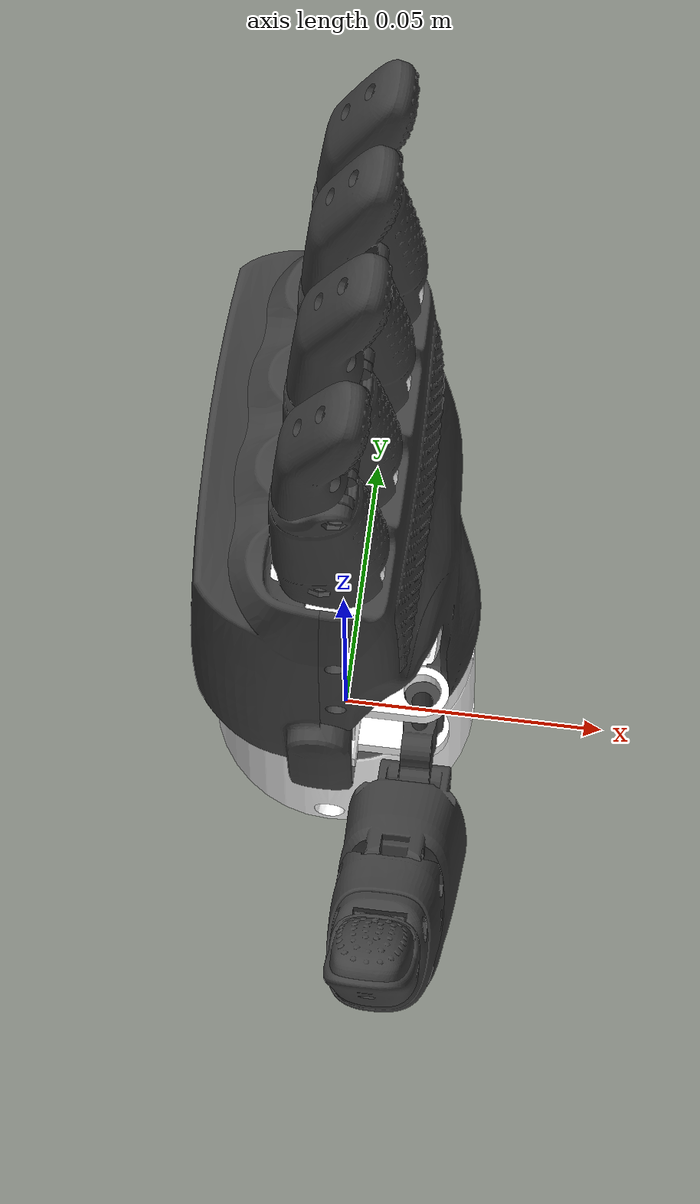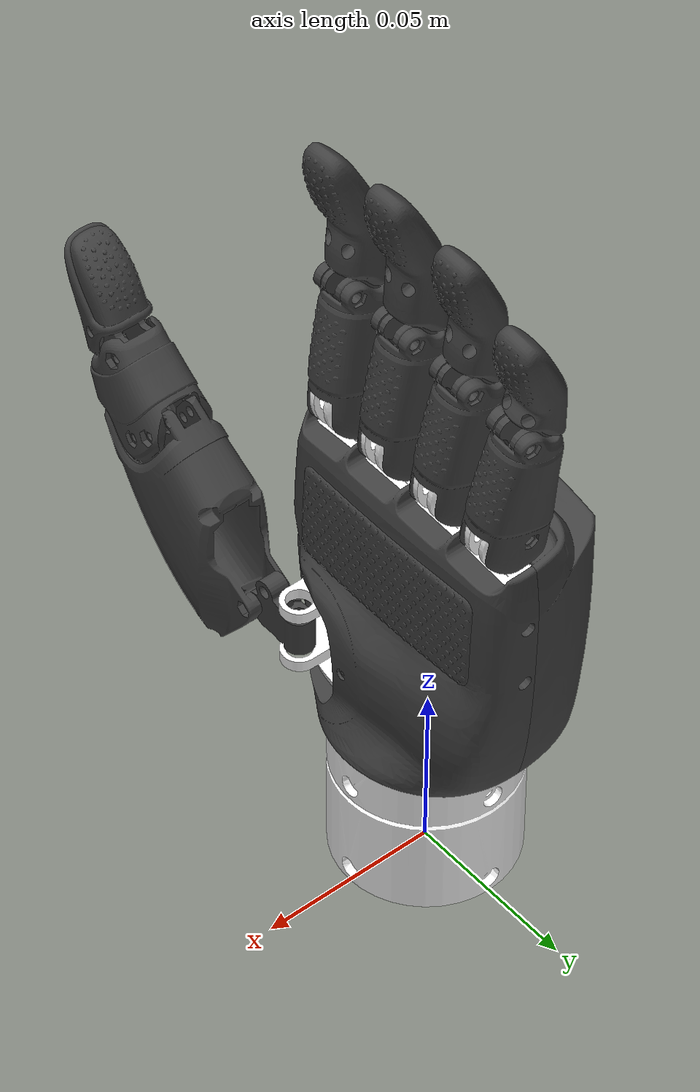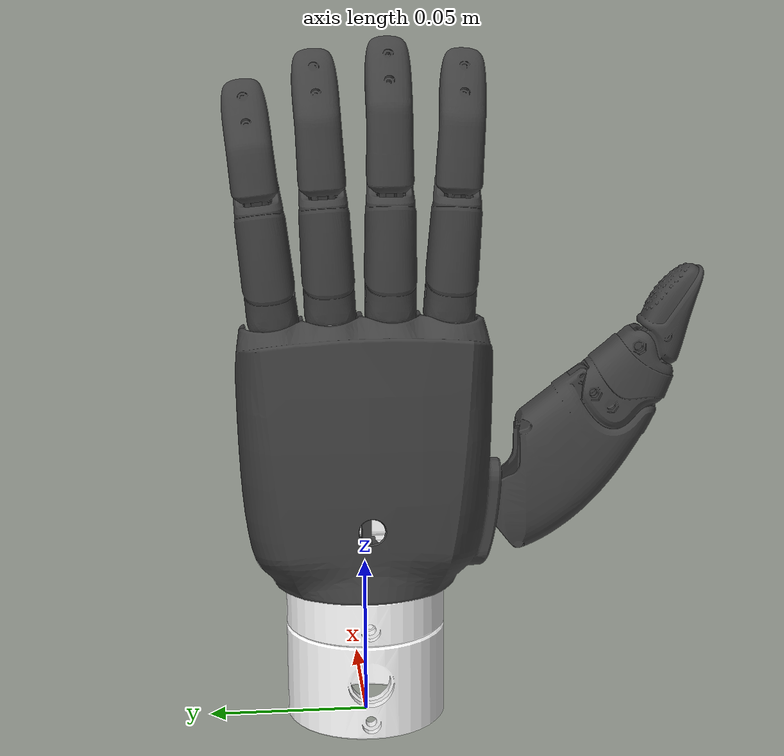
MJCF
<mujoco model="inspire_rh56f1_left">
  <compiler angle="radian" meshdir="assets_left" autolimits="true"/>

  <asset>
    <mesh file="base_link.obj"/>
    <mesh file="palm_1.obj"/>
    <mesh file="palm_2.obj"/>
    <mesh file="palm_2_collision_0.obj"/>
    <mesh file="palm_2_collision_1.obj"/>
    <mesh file="palm_2_collision_2.obj"/>
    <mesh file="palm_2_collision_3.obj"/>
    <mesh file="palm_2_collision_4.obj"/>
    <mesh file="palm_2_collision_5.obj"/>
    <mesh file="palm_2_collision_6.obj"/>
    <mesh file="palm_2_collision_7.obj"/>
    <mesh file="palm_2_collision_8.obj"/>
    <mesh file="palm_2_collision_9.obj"/>
    <mesh file="palm_2_collision_10.obj"/>
    <mesh file="palm_2_collision_11.obj"/>
    <mesh file="palm_2_collision_12.obj"/>
    <mesh file="palm_2_collision_13.obj"/>
    <mesh file="palm_2_collision_14.obj"/>
    <mesh file="palm_2_collision_15.obj"/>
    <mesh file="palm_2_collision_16.obj"/>
    <mesh file="palm_2_collision_17.obj"/>
    <mesh file="palm_2_collision_18.obj"/>
    <mesh file="palm_2_collision_19.obj"/>
    <mesh file="palm_2_collision_20.obj"/>
    <mesh file="palm_2_collision_21.obj"/>
    <mesh file="palm_2_collision_22.obj"/>
    <mesh file="palm_2_collision_23.obj"/>
    <mesh file="palm_2_collision_24.obj"/>
    <mesh file="palm_2_collision_25.obj"/>
    <mesh file="palm_2_collision_26.obj"/>
    <mesh file="palm_2_collision_27.obj"/>
    <mesh file="palm_2_collision_28.obj"/>
    <mesh file="palm_2_collision_29.obj"/>
    <mesh file="palm_2_collision_30.obj"/>
    <mesh file="palm_2_collision_31.obj"/>
    <mesh file="palm_2_collision_32.obj"/>
    <mesh file="palm_2_collision_33.obj"/>
    <mesh file="palm_2_collision_34.obj"/>
    <mesh file="palm_2_collision_35.obj"/>
    <mesh file="palm_2_collision_36.obj"/>
    <mesh file="palm_2_collision_37.obj"/>
    <mesh file="palm_2_collision_38.obj"/>
    <mesh file="palm_2_collision_39.obj"/>
    <mesh file="palm_2_collision_40.obj"/>
    <mesh file="palm_2_collision_41.obj"/>
    <mesh file="palm_2_collision_42.obj"/>
    <mesh file="palm_2_collision_43.obj"/>
    <mesh file="palm_2_collision_44.obj"/>
    <mesh file="palm_2_collision_45.obj"/>
    <mesh file="palm_2_collision_46.obj"/>
    <mesh file="palm_2_collision_47.obj"/>
    <mesh file="palm_2_collision_48.obj"/>
    <mesh file="palm_2_collision_49.obj"/>
    <mesh file="palm_2_collision_50.obj"/>
    <mesh file="palm_2_collision_51.obj"/>
    <mesh file="palm_2_collision_52.obj"/>
    <mesh file="palm_2_collision_53.obj"/>
    <mesh file="palm_2_collision_54.obj"/>
    <mesh file="palm_2_collision_55.obj"/>
    <mesh file="palm_2_collision_56.obj"/>
    <mesh file="palm_2_collision_57.obj"/>
    <mesh file="palm_2_collision_58.obj"/>
    <mesh file="palm_2_collision_59.obj"/>
    <mesh file="palm_2_collision_60.obj"/>
    <mesh file="palm_2_collision_61.obj"/>
    <mesh file="palm_2_collision_62.obj"/>
    <mesh file="palm_2_collision_63.obj"/>
    <mesh file="palm_2_collision_64.obj"/>
    <mesh file="palm_2_collision_65.obj"/>
    <mesh file="palm_2_collision_66.obj"/>
    <mesh file="palm_2_collision_67.obj"/>
    <mesh file="palm_2_collision_68.obj"/>
    <mesh file="palm_2_collision_69.obj"/>
    <mesh file="palm_2_collision_70.obj"/>
    <mesh file="palm_2_collision_71.obj"/>
    <mesh file="palm_2_collision_72.obj"/>
    <mesh file="palm_2_collision_73.obj"/>
    <mesh file="palm_2_collision_74.obj"/>
    <mesh file="palm_2_collision_75.obj"/>
    <mesh file="palm_2_collision_76.obj"/>
    <mesh file="palm_2_collision_77.obj"/>
    <mesh file="palm_2_collision_78.obj"/>
    <mesh file="palm_2_collision_79.obj"/>
    <mesh file="palm_2_collision_80.obj"/>
    <mesh file="palm_2_collision_81.obj"/>
    <mesh file="palm_2_collision_82.obj"/>
    <mesh file="palm_2_collision_83.obj"/>
    <mesh file="palm_2_collision_84.obj"/>
    <mesh file="palm_2_collision_85.obj"/>
    <mesh file="palm_2_collision_86.obj"/>
    <mesh file="palm_2_collision_87.obj"/>
    <mesh file="palm_2_collision_88.obj"/>
    <mesh file="palm_2_collision_89.obj"/>
    <mesh file="palm_2_collision_90.obj"/>
    <mesh file="palm_2_collision_91.obj"/>
    <mesh file="palm_2_collision_92.obj"/>
    <mesh file="palm_2_collision_93.obj"/>
    <mesh file="palm_2_collision_94.obj"/>
    <mesh file="palm_2_collision_95.obj"/>
    <mesh file="palm_2_collision_96.obj"/>
    <mesh file="palm_2_collision_97.obj"/>
    <mesh file="palm_2_collision_98.obj"/>
    <mesh file="palm_2_collision_99.obj"/>
    <mesh file="palm_2_collision_100.obj"/>
    <mesh file="palm_2_collision_101.obj"/>
    <mesh file="palm_2_collision_102.obj"/>
    <mesh file="palm_2_collision_103.obj"/>
    <mesh file="palm_2_collision_104.obj"/>
    <mesh file="palm_2_collision_105.obj"/>
    <mesh file="palm_2_collision_106.obj"/>
    <mesh file="palm_2_collision_107.obj"/>
    <mesh file="palm_2_collision_108.obj"/>
    <mesh file="palm_2_collision_109.obj"/>
    <mesh file="palm_2_collision_110.obj"/>
    <mesh file="palm_2_collision_111.obj"/>
    <mesh file="palm_2_collision_112.obj"/>
    <mesh file="palm_2_collision_113.obj"/>
    <mesh file="palm_2_collision_114.obj"/>
    <mesh file="palm_2_collision_115.obj"/>
    <mesh file="palm_2_collision_116.obj"/>
    <mesh file="palm_2_collision_117.obj"/>
    <mesh file="palm_2_collision_118.obj"/>
    <mesh file="palm_2_collision_119.obj"/>
    <mesh file="palm_2_collision_120.obj"/>
    <mesh file="palm_2_collision_121.obj"/>
    <mesh file="palm_2_collision_122.obj"/>
    <mesh file="palm_2_collision_123.obj"/>
    <mesh file="palm_2_collision_124.obj"/>
    <mesh file="palm_2_collision_125.obj"/>
    <mesh file="palm_2_collision_126.obj"/>
    <mesh file="palm_2_collision_127.obj"/>
    <mesh file="palm_2_collision_128.obj"/>
    <mesh file="palm_2_collision_129.obj"/>
    <mesh file="palm_3.obj"/>
    <mesh file="thumb_1.obj"/>
    <mesh file="thumb_2.obj"/>
    <mesh file="thumb_3.obj"/>
    <mesh file="thumb_4.obj"/>
    <mesh file="index_1.obj"/>
    <mesh file="index_2.obj"/>
    <mesh file="index_2_collision_0.obj"/>
    <mesh file="index_2_collision_1.obj"/>
    <mesh file="index_2_collision_2.obj"/>
    <mesh file="index_2_collision_3.obj"/>
    <mesh file="index_2_collision_4.obj"/>
    <mesh file="index_2_collision_5.obj"/>
    <mesh file="index_2_collision_6.obj"/>
    <mesh file="index_2_collision_7.obj"/>
    <mesh file="index_2_collision_8.obj"/>
    <mesh file="index_2_collision_9.obj"/>
    <mesh file="index_2_collision_10.obj"/>
    <mesh file="index_2_collision_11.obj"/>
    <mesh file="index_2_collision_12.obj"/>
    <mesh file="index_2_collision_13.obj"/>
    <mesh file="index_2_collision_14.obj"/>
    <mesh file="index_2_collision_15.obj"/>
    <mesh file="index_2_collision_16.obj"/>
    <mesh file="index_2_collision_17.obj"/>
    <mesh file="index_2_collision_18.obj"/>
    <mesh file="index_2_collision_19.obj"/>
    <mesh file="index_2_collision_20.obj"/>
    <mesh file="index_2_collision_21.obj"/>
    <mesh file="index_2_collision_22.obj"/>
    <mesh file="middle_1.obj"/>
    <mesh file="middle_2.obj"/>
    <mesh file="middle_2_collision_0.obj"/>
    <mesh file="middle_2_collision_1.obj"/>
    <mesh file="middle_2_collision_2.obj"/>
    <mesh file="middle_2_collision_3.obj"/>
    <mesh file="middle_2_collision_4.obj"/>
    <mesh file="middle_2_collision_5.obj"/>
    <mesh file="middle_2_collision_6.obj"/>
    <mesh file="middle_2_collision_7.obj"/>
    <mesh file="middle_2_collision_8.obj"/>
    <mesh file="middle_2_collision_9.obj"/>
    <mesh file="middle_2_collision_10.obj"/>
    <mesh file="middle_2_collision_11.obj"/>
    <mesh file="middle_2_collision_12.obj"/>
    <mesh file="middle_2_collision_13.obj"/>
    <mesh file="middle_2_collision_14.obj"/>
    <mesh file="middle_2_collision_15.obj"/>
    <mesh file="middle_2_collision_16.obj"/>
    <mesh file="ring_1.obj"/>
    <mesh file="ring_2.obj"/>
    <mesh file="ring_2_collision_0.obj"/>
    <mesh file="ring_2_collision_1.obj"/>
    <mesh file="ring_2_collision_2.obj"/>
    <mesh file="ring_2_collision_3.obj"/>
    <mesh file="ring_2_collision_4.obj"/>
    <mesh file="ring_2_collision_5.obj"/>
    <mesh file="ring_2_collision_6.obj"/>
    <mesh file="ring_2_collision_7.obj"/>
    <mesh file="ring_2_collision_8.obj"/>
    <mesh file="ring_2_collision_9.obj"/>
    <mesh file="ring_2_collision_10.obj"/>
    <mesh file="ring_2_collision_11.obj"/>
    <mesh file="ring_2_collision_12.obj"/>
    <mesh file="ring_2_collision_13.obj"/>
    <mesh file="ring_2_collision_14.obj"/>
    <mesh file="ring_2_collision_15.obj"/>
    <mesh file="ring_2_collision_16.obj"/>
    <mesh file="ring_2_collision_17.obj"/>
    <mesh file="ring_2_collision_18.obj"/>
    <mesh file="ring_2_collision_19.obj"/>
    <mesh file="ring_2_collision_20.obj"/>
    <mesh file="little_1.obj"/>
    <mesh file="little_2.obj"/>
    <mesh file="little_2_collision_0.obj"/>
    <mesh file="little_2_collision_1.obj"/>
    <mesh file="little_2_collision_2.obj"/>
    <mesh file="little_2_collision_3.obj"/>
    <mesh file="little_2_collision_4.obj"/>
    <mesh file="little_2_collision_5.obj"/>
    <mesh file="little_2_collision_6.obj"/>
    <mesh file="little_2_collision_7.obj"/>
    <mesh file="little_2_collision_8.obj"/>
    <mesh file="little_2_collision_9.obj"/>
    <mesh file="little_2_collision_10.obj"/>
    <mesh file="little_2_collision_11.obj"/>
    <mesh file="little_2_collision_12.obj"/>
    <mesh file="little_2_collision_13.obj"/>
    <mesh file="little_2_collision_14.obj"/>
    <mesh file="little_2_collision_15.obj"/>
    <mesh file="little_2_collision_16.obj"/>
    <mesh file="little_2_collision_17.obj"/>
    <mesh file="little_2_collision_18.obj"/>
    <mesh file="little_2_collision_19.obj"/>
    <mesh file="little_2_collision_20.obj"/>
    <mesh file="little_2_collision_21.obj"/>
    <mesh file="little_2_collision_22.obj"/>
    <mesh file="little_2_collision_23.obj"/>
    <mesh file="little_2_collision_24.obj"/>
    <mesh file="little_2_collision_25.obj"/>
    <mesh file="little_2_collision_26.obj"/>
    <mesh file="little_2_collision_27.obj"/>
    <mesh file="little_2_collision_28.obj"/>
    <mesh file="little_2_collision_29.obj"/>
    <mesh file="little_2_collision_30.obj"/>
    <mesh file="little_2_collision_31.obj"/>
    <mesh file="little_2_collision_32.obj"/>

    <mesh file="palm_tactile_sensor.obj"/>
  </asset>

  <default>
    <default class="inspire_rh56f1_left">
      <default class="visual">
        <geom type="mesh" contype="0" conaffinity="0" group="2" rgba="0.25 0.25 0.25 1" mass="0"/>
      </default>

      <default class="collision">
        <geom type="mesh" group="3" rgba="0.25 0.25 0.25 1"/>
      </default>

      <default class="joint">
        <joint armature="0.001" damping="0.05" frictionloss="0.001"/>
        <default class="thumb_1">
          <joint range="0 2.0944"/>
          <position ctrlrange="0 2.0944"/>
        </default>
        <default class="thumb_2">
          <joint range="0 0.4746"/>
          <position ctrlrange="0 0.4746"/>
        </default>
        <default class="thumb_3">
          <joint range="0 3.14"/>
        </default>
        <default class="thumb_4">
          <joint range="0 3.14"/>
        </default>
        <default class="finger_1">
          <joint axis="0 0 -1" range="0 1.5286"/>
          <position ctrlrange="0 1.5286"/>
        </default>
        <default class="finger_2">
          <joint axis="0 0 -1" range="0 3.14"/>
        </default>
      </default>
    </default>
  </default>

  <worldbody>
    <body name="base_link" childclass="inspire_rh56f1_left">
      <geom rgba="1 1 1 1" mesh="base_link" class="visual"/>
      <geom rgba="1 1 1 1" mesh="base_link" class="collision"/>
      <body name="palm" pos="0 0 0.0305">
        <geom rgba="1 1 1 1" mesh="palm_1" class="visual"/>
        <geom mesh="palm_2" class="visual"/>
        <geom mesh="palm_2_collision_0" rgba="0.14206185570898022 0.6122910523167692 0.9866102667565307 1" class="collision"/>
        <geom mesh="palm_2_collision_1" rgba="0.7212493718993862 0.08609639354667564 0.20719384763311433 1" class="collision"/>
        <geom mesh="palm_2_collision_2" rgba="0.18489349942844446 0.28353887721296755 0.08292656414993771 1" class="collision"/>
        <geom mesh="palm_2_collision_3" rgba="0.013000274959250269 0.030443842182487857 0.6916140638799306 1" class="collision"/>
        <geom mesh="palm_2_collision_4" rgba="0.3444471858017044 0.2867014575626077 0.6418222576718902 1" class="collision"/>
        <geom mesh="palm_2_collision_5" rgba="0.04759252251881785 0.7035487295493952 0.5227900881994707 1" class="collision"/>
        <geom mesh="palm_2_collision_6" rgba="0.798804166863255 0.15556509380850692 0.06436139096366245 1" class="collision"/>
        <geom mesh="palm_2_collision_7" rgba="0.9652911672040825 0.23609545465457016 0.9948435843105485 1" class="collision"/>
        <geom mesh="palm_2_collision_8" rgba="0.28546775296174676 0.13044602355146395 0.19202620354053368 1" class="collision"/>
        <geom mesh="palm_2_collision_9" rgba="0.6279266193849576 0.2587987331076772 0.017920129391572504 1" class="collision"/>
        <geom mesh="palm_2_collision_10" rgba="0.5456049217055454 0.5050241089109673 0.9281891873654419 1" class="collision"/>
        <geom mesh="palm_2_collision_11" rgba="0.7591608752918528 0.3947804793792339 0.3306838527083297 1" class="collision"/>
        <geom mesh="palm_2_collision_12" rgba="0.6179266593718417 0.8328071167731302 0.902469987410971 1" class="collision"/>
        <geom mesh="palm_2_collision_13" rgba="0.7936624082435719 0.25837956395579065 0.16732755947252298 1" class="collision"/>
        <geom mesh="palm_2_collision_14" rgba="0.4463036066143916 0.644617741699177 0.4899572460735473 1" class="collision"/>
        <geom mesh="palm_2_collision_15" rgba="0.15246593204663828 0.5923774125373285 0.5862696541783617 1" class="collision"/>
        <geom mesh="palm_2_collision_16" rgba="0.1646512133524216 0.26961172361471386 0.6583997351212504 1" class="collision"/>
        <geom mesh="palm_2_collision_17" rgba="0.8556893839442072 0.5542426703362595 0.38529211705775657 1" class="collision"/>
        <geom mesh="palm_2_collision_18" rgba="0.9997183679541146 0.03270609754437814 0.0089964075625385 1" class="collision"/>
        <geom mesh="palm_2_collision_19" rgba="0.5947674492488465 0.7979289113385819 0.6098690121402385 1" class="collision"/>
        <geom mesh="palm_2_collision_20" rgba="0.29440836570848905 0.07212196912705537 0.5035743828464055 1" class="collision"/>
        <geom mesh="palm_2_collision_21" rgba="0.12861972998720417 0.8770663902734385 0.11573978090793291 1" class="collision"/>
        <geom mesh="palm_2_collision_22" rgba="0.000972603311090281 0.04901934133838537 0.561103540221837 1" class="collision"/>
        <geom mesh="palm_2_collision_23" rgba="0.2575163194415422 0.6151847804823817 0.13757004882308443 1" class="collision"/>
        <geom mesh="palm_2_collision_24" rgba="0.06167798226410859 0.32297718268303044 0.8649733355925451 1" class="collision"/>
        <geom mesh="palm_2_collision_25" rgba="0.08214398990921423 0.6277276083794697 0.33161346794005886 1" class="collision"/>
        <geom mesh="palm_2_collision_26" rgba="0.4732441267618587 0.5823551225303313 0.8927273321420496 1" class="collision"/>
        <geom mesh="palm_2_collision_27" rgba="0.7549279371792222 0.35684483700878267 0.20172689957291579 1" class="collision"/>
        <geom mesh="palm_2_collision_28" rgba="0.10341202812017047 0.3343993369221374 0.21550422675130387 1" class="collision"/>
        <geom mesh="palm_2_collision_29" rgba="0.8648376281954612 0.5979264343252207 0.012798471725145033 1" class="collision"/>
        <geom mesh="palm_2_collision_30" rgba="0.08311426049586912 0.71690414548751 0.16755731330447932 1" class="collision"/>
        <geom mesh="palm_2_collision_31" rgba="0.5881504594861283 0.2320479132060438 0.03203469728063302 1" class="collision"/>
        <geom mesh="palm_2_collision_32" rgba="0.16949545939283273 0.5277728137609866 0.978573556264688 1" class="collision"/>
        <geom mesh="palm_2_collision_33" rgba="0.32686626212988346 0.960836237767816 0.9893391112511141 1" class="collision"/>
        <geom mesh="palm_2_collision_34" rgba="0.5075247510010725 0.5166764419508932 0.6928701329576361 1" class="collision"/>
        <geom mesh="palm_2_collision_35" rgba="0.6597216090063632 0.5569225710616088 0.7263426926485228 1" class="collision"/>
        <geom mesh="palm_2_collision_36" rgba="0.8108553100401092 0.8852694747797353 0.23061675551790273 1" class="collision"/>
        <geom mesh="palm_2_collision_37" rgba="0.31503268391823536 0.2877484122891646 0.030632625902139554 1" class="collision"/>
        <geom mesh="palm_2_collision_38" rgba="0.5949542274211941 0.5966680664964464 0.5390605277331313 1" class="collision"/>
        <geom mesh="palm_2_collision_39" rgba="0.7634425373483289 0.5166874359125065 0.7535013179432475 1" class="collision"/>
        <geom mesh="palm_2_collision_40" rgba="0.7827559215166592 0.5648680125818898 0.20860083107052652 1" class="collision"/>
        <geom mesh="palm_2_collision_41" rgba="0.6893142187188741 0.7531178822328046 0.5903023703595167 1" class="collision"/>
        <geom mesh="palm_2_collision_42" rgba="0.26186896369954427 0.4004699817165869 0.7453751346598727 1" class="collision"/>
        <geom mesh="palm_2_collision_43" rgba="0.14911934028186435 0.9326104842935233 0.9201552507360579 1" class="collision"/>
        <geom mesh="palm_2_collision_44" rgba="0.24331707389494184 0.6794377592177892 0.06539723295222233 1" class="collision"/>
        <geom mesh="palm_2_collision_45" rgba="0.939049837529741 0.6684372980179948 0.8886582228507142 1" class="collision"/>
        <geom mesh="palm_2_collision_46" rgba="0.11746836350472423 0.9665970649018927 0.7186354203853996 1" class="collision"/>
        <geom mesh="palm_2_collision_47" rgba="0.2902823891881564 0.9546600047044131 0.6203220272684061 1" class="collision"/>
        <geom mesh="palm_2_collision_48" rgba="0.9229288316815064 0.45953422704603764 0.5004112631027775 1" class="collision"/>
        <geom mesh="palm_2_collision_49" rgba="0.40560924752665994 0.9756128115993686 0.5482920216814762 1" class="collision"/>
        <geom mesh="palm_2_collision_50" rgba="0.3686786157453643 0.9541386704285774 0.4492302452082575 1" class="collision"/>
        <geom mesh="palm_2_collision_51" rgba="0.5923686298592268 0.9634704267873326 0.5965154537176205 1" class="collision"/>
        <geom mesh="palm_2_collision_52" rgba="0.13817363266930627 0.10612087008658566 0.16298823733585088 1" class="collision"/>
        <geom mesh="palm_2_collision_53" rgba="0.8467746337780738 0.3606217828396683 0.38771499885599636 1" class="collision"/>
        <geom mesh="palm_2_collision_54" rgba="0.6959176699073315 0.5874000885853882 0.6417195340371752 1" class="collision"/>
        <geom mesh="palm_2_collision_55" rgba="0.6441965119058554 0.0717763894998551 0.39902351693210436 1" class="collision"/>
        <geom mesh="palm_2_collision_56" rgba="0.5534558525581748 0.05217157988643617 0.6041769842615731 1" class="collision"/>
        <geom mesh="palm_2_collision_57" rgba="0.08971812520733335 0.9728526777738782 0.7080378294741206 1" class="collision"/>
        <geom mesh="palm_2_collision_58" rgba="0.3231329799670598 0.9238617607784513 0.1530473317531743 1" class="collision"/>
        <geom mesh="palm_2_collision_59" rgba="0.4173675743673201 0.9879611945247858 0.08520666104775887 1" class="collision"/>
        <geom mesh="palm_2_collision_60" rgba="0.6345578454576719 0.4931113271497224 0.07684281747749289 1" class="collision"/>
        <geom mesh="palm_2_collision_61" rgba="0.9415583770349769 0.9911360068556889 0.3908055763361342 1" class="collision"/>
        <geom mesh="palm_2_collision_62" rgba="0.0799152212005132 0.09498419299598093 0.8969210909553991 1" class="collision"/>
        <geom mesh="palm_2_collision_63" rgba="0.41261075442320405 0.7188266207515898 0.3776889182159284 1" class="collision"/>
        <geom mesh="palm_2_collision_64" rgba="0.26445207589481556 0.48926095955484084 0.8813499491746771 1" class="collision"/>
        <geom mesh="palm_2_collision_65" rgba="0.009898857445393316 0.8681045557877222 0.8224636126178042 1" class="collision"/>
        <geom mesh="palm_2_collision_66" rgba="0.7370866811226391 0.08469857360329147 0.21803543296850392 1" class="collision"/>
        <geom mesh="palm_2_collision_67" rgba="0.5086500439636503 0.29762985947101983 0.723245400398607 1" class="collision"/>
        <geom mesh="palm_2_collision_68" rgba="0.43081878687161546 0.6904229425224643 0.06499757823386765 1" class="collision"/>
        <geom mesh="palm_2_collision_69" rgba="0.3746156856721413 0.5988040871680553 0.9708014714882167 1" class="collision"/>
        <geom mesh="palm_2_collision_70" rgba="0.22012438239600018 0.7364819911320178 0.6638203109597639 1" class="collision"/>
        <geom mesh="palm_2_collision_71" rgba="0.3525138766790562 0.7782334847976038 0.8120897890252977 1" class="collision"/>
        <geom mesh="palm_2_collision_72" rgba="0.9904901922908128 0.0894219246165564 0.37125052018681926 1" class="collision"/>
        <geom mesh="palm_2_collision_73" rgba="0.7485758513873524 0.6207566549769286 0.41226062512266637 1" class="collision"/>
        <geom mesh="palm_2_collision_74" rgba="0.9487040727732861 0.6637430732544224 0.24837732894170084 1" class="collision"/>
        <geom mesh="palm_2_collision_75" rgba="0.1448545266982224 0.7378763671531035 0.7475580682010562 1" class="collision"/>
        <geom mesh="palm_2_collision_76" rgba="0.6915545181819569 0.8629446908304745 0.5992605782186574 1" class="collision"/>
        <geom mesh="palm_2_collision_77" rgba="0.5707426588012361 0.0014450126185273637 0.21714292581057182 1" class="collision"/>
        <geom mesh="palm_2_collision_78" rgba="0.3388346487913171 0.2201269764792695 0.28109910395443327 1" class="collision"/>
        <geom mesh="palm_2_collision_79" rgba="0.17010878478506208 0.36072691898183284 0.9007796073391088 1" class="collision"/>
        <geom mesh="palm_2_collision_80" rgba="0.6044729440810909 0.08117449647484187 0.22805263378503982 1" class="collision"/>
        <geom mesh="palm_2_collision_81" rgba="0.5997049200981542 0.6069603497408471 0.85069817017706 1" class="collision"/>
        <geom mesh="palm_2_collision_82" rgba="0.08913320330392649 0.5208704195520141 0.13464761454679552 1" class="collision"/>
        <geom mesh="palm_2_collision_83" rgba="0.6722206399007646 0.1685007180730953 0.5827374199246779 1" class="collision"/>
        <geom mesh="palm_2_collision_84" rgba="0.739157835212082 0.8669907400012998 0.6588794997039171 1" class="collision"/>
        <geom mesh="palm_2_collision_85" rgba="0.58293576826942 0.17064294400873603 0.5873944401699321 1" class="collision"/>
        <geom mesh="palm_2_collision_86" rgba="0.3105668786584773 0.5297239110682914 0.7887414556820205 1" class="collision"/>
        <geom mesh="palm_2_collision_87" rgba="0.14900231618684612 0.9859166361041262 0.9361675489097798 1" class="collision"/>
        <geom mesh="palm_2_collision_88" rgba="0.5334328582774237 0.3331878865824075 0.2690509662194974 1" class="collision"/>
        <geom mesh="palm_2_collision_89" rgba="0.4389248151875639 0.9838185557494789 0.8210559806064578 1" class="collision"/>
        <geom mesh="palm_2_collision_90" rgba="0.2904766886200154 0.3359189907507548 0.46757809710466935 1" class="collision"/>
        <geom mesh="palm_2_collision_91" rgba="0.4952826343323956 0.020374594947180302 0.3909950266710024 1" class="collision"/>
        <geom mesh="palm_2_collision_92" rgba="0.8814993284709125 0.40469436365489786 0.07896499285820624 1" class="collision"/>
        <geom mesh="palm_2_collision_93" rgba="0.5573700270518633 0.19119101722948162 0.3903730665840509 1" class="collision"/>
        <geom mesh="palm_2_collision_94" rgba="0.9081423687257204 0.05302876790526878 0.9947602722929235 1" class="collision"/>
        <geom mesh="palm_2_collision_95" rgba="0.11942022777851258 0.6700136943310503 0.562861362703468 1" class="collision"/>
        <geom mesh="palm_2_collision_96" rgba="0.9023237827501421 0.2923560265600411 0.07516958059820333 1" class="collision"/>
        <geom mesh="palm_2_collision_97" rgba="0.4018157937399758 0.02773520311665212 0.0978088902120482 1" class="collision"/>
        <geom mesh="palm_2_collision_98" rgba="0.7675117210935213 0.8836117564188394 0.8372237308336974 1" class="collision"/>
        <geom mesh="palm_2_collision_99" rgba="0.2053087125505484 0.6236130268958257 0.335636812402617 1" class="collision"/>
        <geom mesh="palm_2_collision_100" rgba="0.6737598948723258 0.09566381043282035 0.06887971627750555 1" class="collision"/>
        <geom mesh="palm_2_collision_101" rgba="0.9210013115072685 0.7456365348539963 0.6400241550925476 1" class="collision"/>
        <geom mesh="palm_2_collision_102" rgba="0.30088506172244167 0.33480260284739627 0.41292450978028006 1" class="collision"/>
        <geom mesh="palm_2_collision_103" rgba="0.1342726148845237 0.759383617740992 0.0659800462459792 1" class="collision"/>
        <geom mesh="palm_2_collision_104" rgba="0.4546285631124931 0.27212990222823785 0.5660737969579874 1" class="collision"/>
        <geom mesh="palm_2_collision_105" rgba="0.38929693713652214 0.0028869472951216224 0.369868089621723 1" class="collision"/>
        <geom mesh="palm_2_collision_106" rgba="0.11165496745715431 0.0728978747767548 0.02243105522485922 1" class="collision"/>
        <geom mesh="palm_2_collision_107" rgba="0.05230946735969744 0.08538925983312118 0.9312815200480602 1" class="collision"/>
        <geom mesh="palm_2_collision_108" rgba="0.6238753806317501 0.7750350066325709 0.32202702578596054 1" class="collision"/>
        <geom mesh="palm_2_collision_109" rgba="0.6696368941803208 0.19832667731639808 0.2664896826156251 1" class="collision"/>
        <geom mesh="palm_2_collision_110" rgba="0.5432560726464817 0.9887864531963595 0.4669055708298374 1" class="collision"/>
        <geom mesh="palm_2_collision_111" rgba="0.7789947477845065 0.27993851083852384 0.7242763208875553 1" class="collision"/>
        <geom mesh="palm_2_collision_112" rgba="0.3061708442455985 0.2804886103907056 0.5232611857674159 1" class="collision"/>
        <geom mesh="palm_2_collision_113" rgba="0.7240932428129423 0.03212205684380498 0.9447648788021289 1" class="collision"/>
        <geom mesh="palm_2_collision_114" rgba="0.9712050515703007 0.5276484873640216 0.6730484204943303 1" class="collision"/>
        <geom mesh="palm_2_collision_115" rgba="0.38380963068248264 0.3512984120793643 0.8557427980879184 1" class="collision"/>
        <geom mesh="palm_2_collision_116" rgba="0.4437286032484833 0.634935066590392 0.020266026600465614 1" class="collision"/>
        <geom mesh="palm_2_collision_117" rgba="0.1257768357636021 0.3931186626976728 0.6097441055257181 1" class="collision"/>
        <geom mesh="palm_2_collision_118" rgba="0.1404725216169509 0.8415921907804018 0.8015912681905146 1" class="collision"/>
        <geom mesh="palm_2_collision_119" rgba="0.771334511399689 0.17407601950140972 0.4777737013563148 1" class="collision"/>
        <geom mesh="palm_2_collision_120" rgba="0.3487364509352482 0.31231261076651984 0.7927101123797169 1" class="collision"/>
        <geom mesh="palm_2_collision_121" rgba="0.46930510503479195 0.691498420584998 0.878617597597416 1" class="collision"/>
        <geom mesh="palm_2_collision_122" rgba="0.3085723853741701 0.09333117513432132 0.08936195676002856 1" class="collision"/>
        <geom mesh="palm_2_collision_123" rgba="0.2522545403332842 0.6530896438743236 0.5849389892169267 1" class="collision"/>
        <geom mesh="palm_2_collision_124" rgba="0.7972144433186956 0.8987148178739643 0.20865990935074175 1" class="collision"/>
        <geom mesh="palm_2_collision_125" rgba="0.9271197120542147 0.7494502597730578 0.4533490498146827 1" class="collision"/>
        <geom mesh="palm_2_collision_126" rgba="0.9252974897385927 0.369241973344549 0.8249587298038181 1" class="collision"/>
        <geom mesh="palm_2_collision_127" rgba="0.029081644057780687 0.6152012440343926 0.011736526623391197 1" class="collision"/>
        <geom mesh="palm_2_collision_128" rgba="0.06483134358211828 0.9949652234768113 0.6956852791511947 1" class="collision"/>
        <geom mesh="palm_2_collision_129" rgba="0.30636564259899746 0.8265489200110455 0.9063595940586163 1" class="collision"/>
        <geom mesh="palm_3" class="visual"/>
        <geom mesh="palm_3" class="collision"/>
        <geom pos="0.0159402 -0.00135045 0.073746" quat="0.5 0.5 0.5 0.5" mesh="palm_tactile_sensor" class="visual"/>
        <geom pos="0.0159402 -0.00135045 0.073746" quat="0.5 0.5 0.5 0.5" mesh="palm_tactile_sensor" class="collision"/>
      </body>
      <body name="thumb_1" pos="0.01836 -0.027241 0.070511">
        <joint name="thumb_1_joint" class="thumb_1"/>
        <geom mesh="thumb_1" class="visual"/>
        <geom mesh="thumb_1" class="collision"/>
        <body name="thumb_2" pos="0.005034 -0.01349 -0.0049121" quat="0.500023 0.499975 -0.499977 -0.500025">
          <joint name="thumb_2_joint" class="thumb_2"/>
          <geom mesh="thumb_2" class="visual"/>
          <geom mesh="thumb_2" class="collision"/>
          <body name="thumb_3" pos="0.033907 0.034601 -0.0029656">
            <joint name="thumb_3_joint" class="thumb_3"/>
            <geom mesh="thumb_3" class="visual"/>
            <geom mesh="thumb_3" class="collision"/>
            <body name="thumb_4" pos="0.01441 0.014648 0.0013">
              <joint name="thumb_4_joint" class="thumb_4"/>
              <geom name="thumb_4" mesh="thumb_4" class="visual"/>
              <geom mesh="thumb_4" class="collision"/>
            </body>
          </body>
        </body>
      </body>
      <body name="index_1" pos="0.00070753 -0.034377 0.13554" quat="0.685177 0.728377 0 0">
        <joint name="index_1_joint" class="finger_1"/>
        <geom mesh="index_1" class="visual"/>
        <geom mesh="index_1" class="collision"/>
        <body name="index_2" pos="0.0031056 0.032854 -0.001">
          <joint name="index_2_joint" class="finger_2"/>
          <geom name="index_2" mesh="index_2" class="visual"/>
          <geom mesh="index_2_collision_0" rgba="0.9441866679801405 0.3503956170624347 0.4116078202439999 1" class="collision"/>
          <geom mesh="index_2_collision_1" rgba="0.0966106890204197 0.4499389436984844 0.3534561487124741 1" class="collision"/>
          <geom mesh="index_2_collision_2" rgba="0.22585975955848647 0.27144331291563495 0.8623188417432761 1" class="collision"/>
          <geom mesh="index_2_collision_3" rgba="0.3004179187734356 0.9892320178031273 0.35069175430776467 1" class="collision"/>
          <geom mesh="index_2_collision_4" rgba="0.051677130577078234 0.6551992608085885 0.5308481460054052 1" class="collision"/>
          <geom mesh="index_2_collision_5" rgba="0.031143962733199637 0.35474787996718005 0.0857057844074477 1" class="collision"/>
          <geom mesh="index_2_collision_6" rgba="0.26636816314333245 0.274960441965166 0.4567399968150798 1" class="collision"/>
          <geom mesh="index_2_collision_7" rgba="0.41952380888601004 0.9193884238393311 0.4577921620041663 1" class="collision"/>
          <geom mesh="index_2_collision_8" rgba="0.6080034185046218 0.48416981211668064 0.36474573568566115 1" class="collision"/>
          <geom mesh="index_2_collision_9" rgba="0.399656970837166 0.6573540935525494 0.992609196452231 1" class="collision"/>
          <geom mesh="index_2_collision_10" rgba="0.45342055123806824 0.28987740922835814 0.6015289625265844 1" class="collision"/>
          <geom mesh="index_2_collision_11" rgba="0.2692886750936906 0.10709168866979446 0.20254822303740316 1" class="collision"/>
          <geom mesh="index_2_collision_12" rgba="0.37128651871600016 0.7690055955195039 0.8146102548207554 1" class="collision"/>
          <geom mesh="index_2_collision_13" rgba="0.8888721329156091 0.9526479294535378 0.7834081552473624 1" class="collision"/>
          <geom mesh="index_2_collision_14" rgba="0.5393460114111981 0.5239152970528221 0.283625675207236 1" class="collision"/>
          <geom mesh="index_2_collision_15" rgba="0.9314458310300687 0.34522543764044844 0.6185550182303758 1" class="collision"/>
          <geom mesh="index_2_collision_16" rgba="0.23859619524411002 0.14455847095522156 0.1748157909239294 1" class="collision"/>
          <geom mesh="index_2_collision_17" rgba="0.09654454163475745 0.3219926630167089 0.07292569302850527 1" class="collision"/>
          <geom mesh="index_2_collision_18" rgba="0.6794678820883455 0.49714505906723616 0.1413883468416265 1" class="collision"/>
          <geom mesh="index_2_collision_19" rgba="0.5122796550383778 0.0032861210747676672 0.16340811331662797 1" class="collision"/>
          <geom mesh="index_2_collision_20" rgba="0.4763563543825078 0.341738615088956 0.3838641249972138 1" class="collision"/>
          <geom mesh="index_2_collision_21" rgba="0.8808368327029945 0.5137877558961648 0.07442781760898487 1" class="collision"/>
          <geom mesh="index_2_collision_22" rgba="0.8909360068397695 0.2593743171622376 0.615227556237916 1" class="collision"/>
        </body>
      </body>
      <body name="middle_1" pos="0.00070746 -0.015767 0.13648" quat="0.707105 0.707108 0 0">
        <joint name="middle_1_joint" class="finger_1"/>
        <geom mesh="middle_1" class="visual"/>
        <geom mesh="middle_1" class="collision"/>
        <body name="middle_2" pos="0.0031056 0.032854 -0.001">
          <joint name="middle_2_joint" class="finger_2"/>
          <geom name="middle_2" mesh="middle_2" class="visual"/>
          <geom mesh="middle_2_collision_0" rgba="0.15021694073178382 0.10761594046412826 0.44608088592586037 1" class="collision"/>
          <geom mesh="middle_2_collision_1" rgba="0.03836344996920582 0.8817237337486993 0.39821431486808434 1" class="collision"/>
          <geom mesh="middle_2_collision_2" rgba="0.7961960200655328 0.987740155718362 0.1469332839989469 1" class="collision"/>
          <geom mesh="middle_2_collision_3" rgba="0.4989747042409739 0.16895805374453277 0.523371621386835 1" class="collision"/>
          <geom mesh="middle_2_collision_4" rgba="0.24602301604564214 0.6192812834065611 0.7363455087674158 1" class="collision"/>
          <geom mesh="middle_2_collision_5" rgba="0.31490078956180456 0.29926273142890947 0.36356361097664736 1" class="collision"/>
          <geom mesh="middle_2_collision_6" rgba="0.3589384269256197 0.8425322451705605 0.07860841357829362 1" class="collision"/>
          <geom mesh="middle_2_collision_7" rgba="0.18881807112400284 0.8806106052405827 0.7710739177778683 1" class="collision"/>
          <geom mesh="middle_2_collision_8" rgba="0.2668416919647072 0.2748718875955841 0.12039732710185791 1" class="collision"/>
          <geom mesh="middle_2_collision_9" rgba="0.006228528291085111 0.09776324464381536 0.7723346741685305 1" class="collision"/>
          <geom mesh="middle_2_collision_10" rgba="0.8853916373363386 0.14612490352027452 0.771296136586576 1" class="collision"/>
          <geom mesh="middle_2_collision_11" rgba="0.08912884641425922 0.24437599255620956 0.1232784774156177 1" class="collision"/>
          <geom mesh="middle_2_collision_12" rgba="0.4771172004823224 0.9951079797963795 0.9663754725308008 1" class="collision"/>
          <geom mesh="middle_2_collision_13" rgba="0.43335310548313377 0.8151290945985431 0.1162308270564767 1" class="collision"/>
          <geom mesh="middle_2_collision_14" rgba="0.8831915488456425 0.1246624066132691 0.5130250397407444 1" class="collision"/>
          <geom mesh="middle_2_collision_15" rgba="0.00046609190790503074 0.7120551540015628 0.007036172720161771 1" class="collision"/>
          <geom mesh="middle_2_collision_16" rgba="0.990758429795856 0.8291505406867683 0.7213234089170136 1" class="collision"/>
        </body>
      </body>
      <body name="ring_1" pos="0.00070746 0.0030876 0.13643" quat="0.725387 0.688341 0 0">
        <joint name="ring_1_joint" class="finger_1"/>
        <geom mesh="ring_1" class="visual"/>
        <geom mesh="ring_1" class="collision"/>
        <body name="ring_2" pos="0.0031056 0.032854 -0.001">
          <joint name="ring_2_joint" class="finger_2"/>
          <geom name="ring_2" mesh="ring_2" class="visual"/>
          <geom mesh="ring_2_collision_0" rgba="0.8116171922206898 0.33627682958720273 0.9244460817249248 1" class="collision"/>
          <geom mesh="ring_2_collision_1" rgba="0.04174054594705179 0.32525379612765737 0.0909198509573248 1" class="collision"/>
          <geom mesh="ring_2_collision_2" rgba="0.06019260188580022 0.002150736141914411 0.4407583238409444 1" class="collision"/>
          <geom mesh="ring_2_collision_3" rgba="0.6122560348320377 0.22759410821365889 0.7942833959902191 1" class="collision"/>
          <geom mesh="ring_2_collision_4" rgba="0.031418195591795484 0.9120142451784584 0.7208356560506685 1" class="collision"/>
          <geom mesh="ring_2_collision_5" rgba="0.14696215497333942 0.6900352733665578 0.17844066102702894 1" class="collision"/>
          <geom mesh="ring_2_collision_6" rgba="0.7791397617766092 0.2263930019373418 0.33634386976239394 1" class="collision"/>
          <geom mesh="ring_2_collision_7" rgba="0.3607938576787396 0.35245791412966965 0.41666833677539905 1" class="collision"/>
          <geom mesh="ring_2_collision_8" rgba="0.8909532629018542 0.3082667403013225 0.9230894435077278 1" class="collision"/>
          <geom mesh="ring_2_collision_9" rgba="0.3504363442120535 0.5793479350572327 0.03138257374841058 1" class="collision"/>
          <geom mesh="ring_2_collision_10" rgba="0.9336462606909522 0.9993943757327983 0.3085722495649029 1" class="collision"/>
          <geom mesh="ring_2_collision_11" rgba="0.9704657001786492 0.9379006997705164 0.9382408804253423 1" class="collision"/>
          <geom mesh="ring_2_collision_12" rgba="0.9122999000516638 0.8141271766227354 0.8122016186753461 1" class="collision"/>
          <geom mesh="ring_2_collision_13" rgba="0.9079048958166674 0.7752145251750748 0.26487814100543383 1" class="collision"/>
          <geom mesh="ring_2_collision_14" rgba="0.6826141434878578 0.5532483658002453 0.7798872450807761 1" class="collision"/>
          <geom mesh="ring_2_collision_15" rgba="0.7353734138508088 0.8678793803288865 0.11018502744198844 1" class="collision"/>
          <geom mesh="ring_2_collision_16" rgba="0.11733885581236725 0.25954959319425996 0.7435699937980446 1" class="collision"/>
          <geom mesh="ring_2_collision_17" rgba="0.248711627280779 0.3132502150112648 0.004233172857059375 1" class="collision"/>
          <geom mesh="ring_2_collision_18" rgba="0.5666893410804675 0.017498348747111647 0.6827865752954644 1" class="collision"/>
          <geom mesh="ring_2_collision_19" rgba="0.3939142462718912 0.2827192633051564 0.8455902314029061 1" class="collision"/>
          <geom mesh="ring_2_collision_20" rgba="0.23002660794012886 0.7057677215503062 0.583025607898681 1" class="collision"/>
        </body>
      </body>
      <body name="little_1" pos="0.00070753 0.021094 0.13531" quat="0.743137 0.669139 0 0">
        <joint name="little_1_joint" class="finger_1"/>
        <geom mesh="little_1" class="visual"/>
        <geom mesh="little_1" class="collision"/>
        <body name="little_2" pos="0.0031057 0.032854 -0.001">
          <joint name="little_2_joint" class="finger_2"/>
          <geom name="little_2" mesh="little_2" class="visual"/>
          <geom mesh="little_2_collision_0" rgba="0.43399413514552243 0.4557101609092469 0.6456531798246956 1" class="collision"/>
          <geom mesh="little_2_collision_1" rgba="0.013247001208437914 0.6097391663198598 0.7887581447515382 1" class="collision"/>
          <geom mesh="little_2_collision_2" rgba="0.3058462081485114 0.483475368313088 0.36737496391349656 1" class="collision"/>
          <geom mesh="little_2_collision_3" rgba="0.999492375537764 0.8556958373481964 0.07709982820454864 1" class="collision"/>
          <geom mesh="little_2_collision_4" rgba="0.059522192304460875 0.3614860274550106 0.4230266264999073 1" class="collision"/>
          <geom mesh="little_2_collision_5" rgba="0.49373727489404495 0.740504021718386 0.2979477707654371 1" class="collision"/>
          <geom mesh="little_2_collision_6" rgba="0.18857413715855176 0.28651363456073786 0.5556326761601703 1" class="collision"/>
          <geom mesh="little_2_collision_7" rgba="0.46085908446693735 0.34196185615761776 0.14774053338759052 1" class="collision"/>
          <geom mesh="little_2_collision_8" rgba="0.20785736595389437 0.3201659500135522 0.5563744820447651 1" class="collision"/>
          <geom mesh="little_2_collision_9" rgba="0.24334875485145058 0.2699742726353167 0.3038988002506434 1" class="collision"/>
          <geom mesh="little_2_collision_10" rgba="0.5017363130996058 0.8392982119073832 0.1462383216675911 1" class="collision"/>
          <geom mesh="little_2_collision_11" rgba="0.850853682558903 0.026216051597888423 0.40562407663902234 1" class="collision"/>
          <geom mesh="little_2_collision_12" rgba="0.6292782522907258 0.19072010615003876 0.8219169478645018 1" class="collision"/>
          <geom mesh="little_2_collision_13" rgba="0.2975502488143399 0.14758940383054786 0.5133103521330312 1" class="collision"/>
          <geom mesh="little_2_collision_14" rgba="0.6629395745174764 0.21870049165997174 0.3437023183646466 1" class="collision"/>
          <geom mesh="little_2_collision_15" rgba="0.6713671889124024 0.791313673240577 0.4923017111025565 1" class="collision"/>
          <geom mesh="little_2_collision_16" rgba="0.030718028078110526 0.817930522702435 0.8655777439951273 1" class="collision"/>
          <geom mesh="little_2_collision_17" rgba="0.7743835997948321 0.824218123020855 0.49955009246013593 1" class="collision"/>
          <geom mesh="little_2_collision_18" rgba="0.6310732451114742 0.5141197737174947 0.30091120866888355 1" class="collision"/>
          <geom mesh="little_2_collision_19" rgba="0.08853693809696128 0.7204713321804029 0.4724486248392551 1" class="collision"/>
          <geom mesh="little_2_collision_20" rgba="0.45189596580374214 0.2474508221316033 0.80160559073893 1" class="collision"/>
          <geom mesh="little_2_collision_21" rgba="0.4930564261509621 0.6320745743482014 0.1327394007703604 1" class="collision"/>
          <geom mesh="little_2_collision_22" rgba="0.8160354652322158 0.7098935048520858 0.7638018388192579 1" class="collision"/>
          <geom mesh="little_2_collision_23" rgba="0.9722876439392157 0.7039541258974672 0.09572593951590769 1" class="collision"/>
          <geom mesh="little_2_collision_24" rgba="0.2637834568337426 0.45349721403487875 0.5973615479547097 1" class="collision"/>
          <geom mesh="little_2_collision_25" rgba="0.8980348623161558 0.07926209248499838 0.9613059104787799 1" class="collision"/>
          <geom mesh="little_2_collision_26" rgba="0.09280669393318974 0.8538663337050402 0.17779306871226452 1" class="collision"/>
          <geom mesh="little_2_collision_27" rgba="0.0908781138334801 0.7983581523899185 0.4274072784946913 1" class="collision"/>
          <geom mesh="little_2_collision_28" rgba="0.40526134744071696 0.4906500601443067 0.9910636750687909 1" class="collision"/>
          <geom mesh="little_2_collision_29" rgba="0.46393858112105835 0.9783870536858805 0.5896512596965552 1" class="collision"/>
          <geom mesh="little_2_collision_30" rgba="0.9162068653900672 0.07220370620632055 0.1281822452794552 1" class="collision"/>
          <geom mesh="little_2_collision_31" rgba="0.5667165078166777 0.797331224951184 0.03959130395275079 1" class="collision"/>
          <geom mesh="little_2_collision_32" rgba="0.36658889111841597 0.9542804364519915 0.4500195691133094 1" class="collision"/>
        </body>
      </body>
    </body>
  </worldbody>

  <contact>
    <exclude body1="palm" body2="thumb_1"/>
    <exclude body1="palm" body2="index_1"/>
    <exclude body1="palm" body2="middle_1"/>
    <exclude body1="palm" body2="ring_1"/>
    <exclude body1="palm" body2="little_1"/>
  </contact>

  <equality>
    <joint joint1="thumb_3_joint" joint2="thumb_2_joint" polycoef="0 1.2953 0 0 0"/>
    <joint joint1="thumb_4_joint" joint2="thumb_2_joint" polycoef="0 1.16084786 0 0 0"/>
    <joint joint1="index_2_joint" joint2="index_1_joint" polycoef="0 1.1545 0 0 0"/>
    <joint joint1="middle_2_joint" joint2="middle_1_joint" polycoef="0 1.1545 0 0 0"/>
    <joint joint1="ring_2_joint" joint2="ring_1_joint" polycoef="0 1.1545 0 0 0"/>
    <joint joint1="little_2_joint" joint2="little_1_joint" polycoef="0 1.1545 0 0 0"/>
  </equality>

  <actuator>
    <position name="thumb_1" joint="thumb_1_joint" class="thumb_1"/>
    <position name="thumb_2" joint="thumb_2_joint" class="thumb_2"/>
    <position name="index" joint="index_1_joint" class="finger_1"/>
    <position name="middle" joint="middle_1_joint" class="finger_1"/>
    <position name="ring" joint="ring_1_joint" class="finger_1"/>
    <position name="little" joint="little_1_joint" class="finger_1"/>
  </actuator>
</mujoco>
